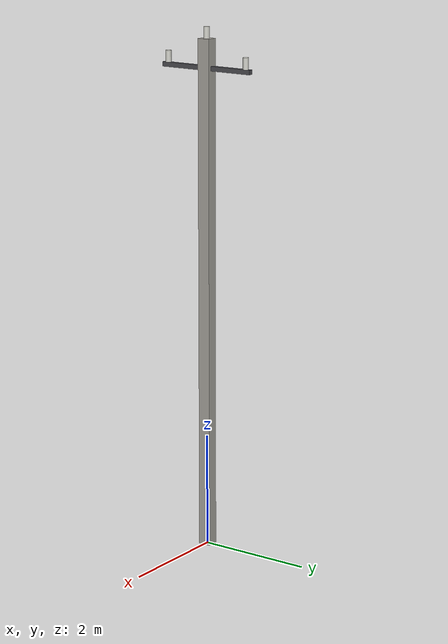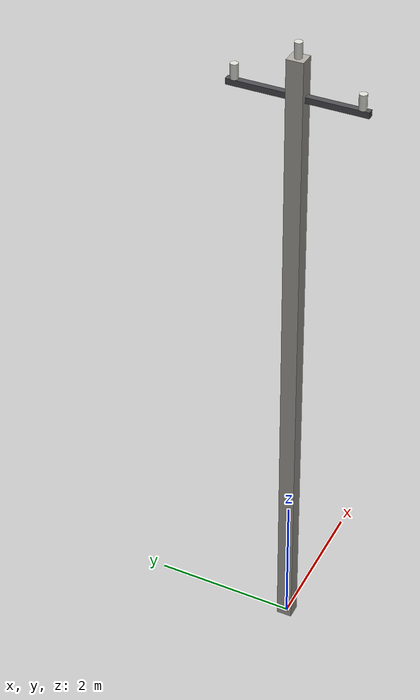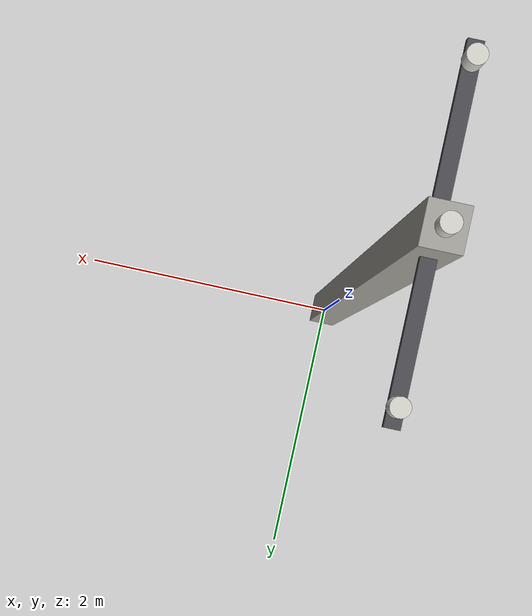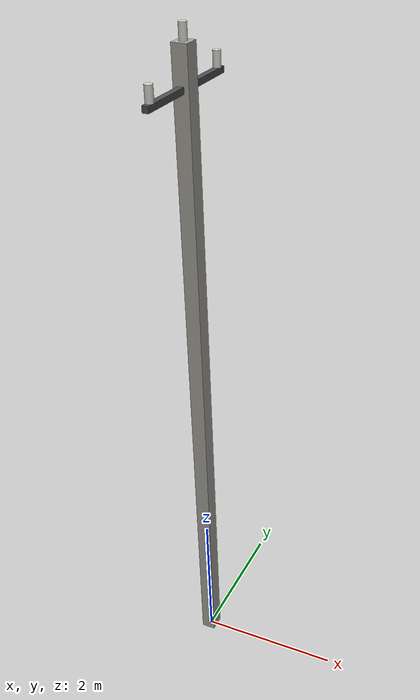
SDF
<?xml version="1.0"?>
<sdf version="1.9">
  <model name="aero_sense_electric_pole">
    <static>true</static>
    <link name="link">
      <collision name="collision">
        <pose>0 0 4.5 0 0 0</pose>
        <geometry><box><size>0.22 0.22 9</size></box></geometry>
      </collision>
      <visual name="pole">
        <pose>0 0 4.5 0 0 0</pose>
        <geometry><box><size>0.2 0.22 9</size></box></geometry>
        <material><ambient>0.66 0.65 0.62 1</ambient><diffuse>0.66 0.65 0.62 1</diffuse></material>
      </visual>
      <visual name="cross_arm">
        <pose>0 0 8.5 0 0 0</pose>
        <geometry><box><size>0.08 1.8 0.08</size></box></geometry>
        <material><ambient>0.3 0.3 0.32 1</ambient><diffuse>0.3 0.3 0.32 1</diffuse></material>
      </visual>
      <visual name="insulator_left">
        <pose>0 -0.8 8.64 0 0 0</pose>
        <geometry><cylinder><radius>0.05</radius><length>0.2</length></cylinder></geometry>
        <material><ambient>0.85 0.85 0.82 1</ambient><diffuse>0.85 0.85 0.82 1</diffuse></material>
      </visual>
      <visual name="insulator_middle">
        <pose>0 0 9.1 0 0 0</pose>
        <geometry><cylinder><radius>0.05</radius><length>0.2</length></cylinder></geometry>
        <material><ambient>0.85 0.85 0.82 1</ambient><diffuse>0.85 0.85 0.82 1</diffuse></material>
      </visual>
      <visual name="insulator_right">
        <pose>0 0.8 8.64 0 0 0</pose>
        <geometry><cylinder><radius>0.05</radius><length>0.2</length></cylinder></geometry>
        <material><ambient>0.85 0.85 0.82 1</ambient><diffuse>0.85 0.85 0.82 1</diffuse></material>
      </visual>
    </link>
  </model>
</sdf>
